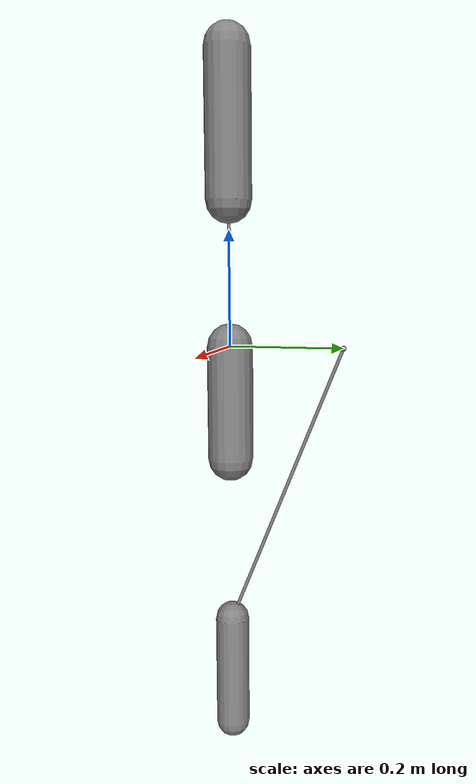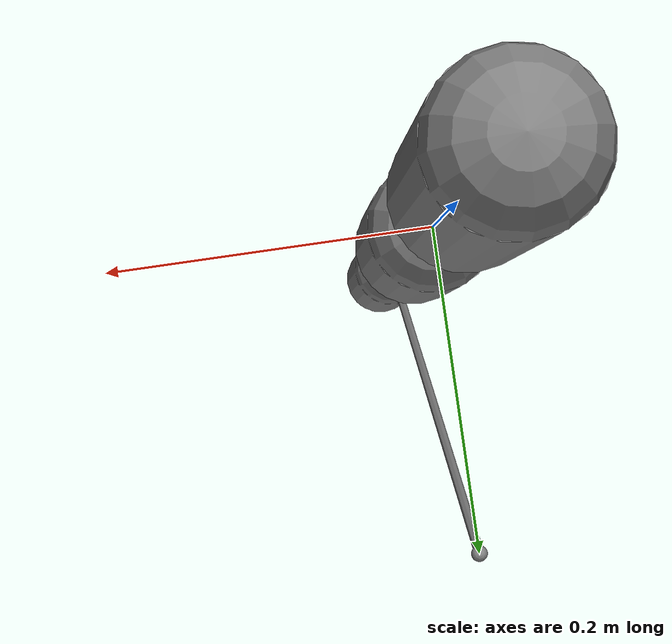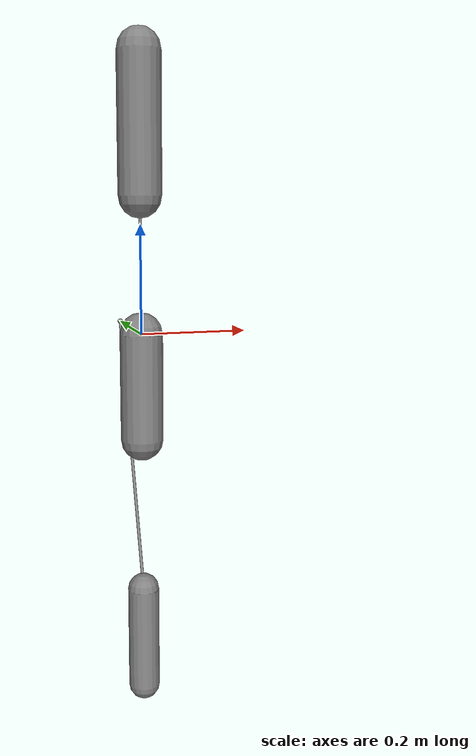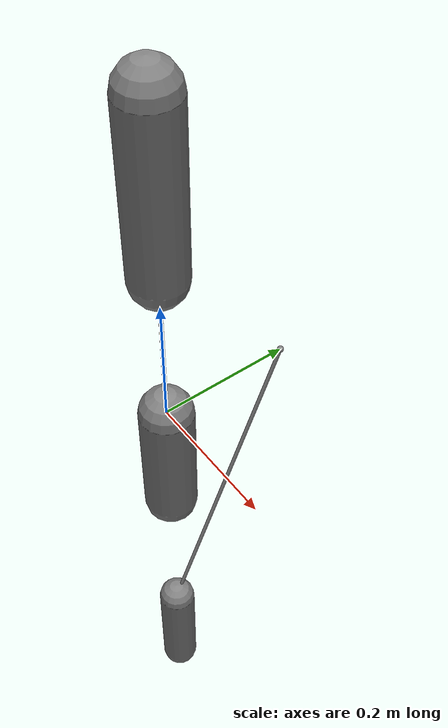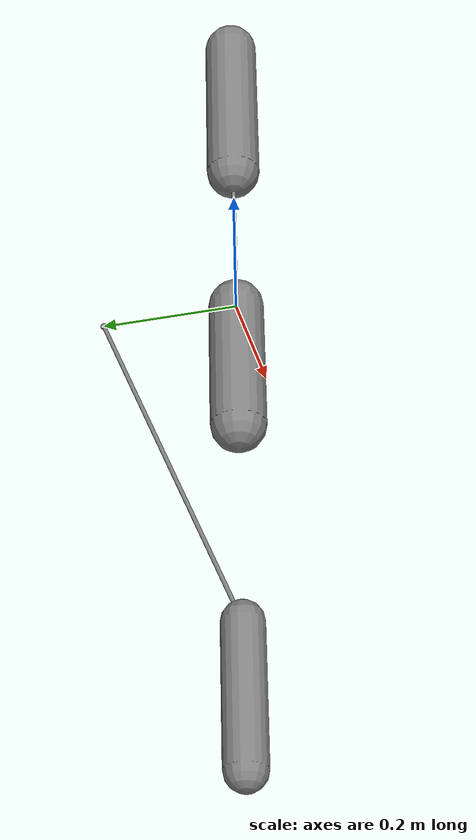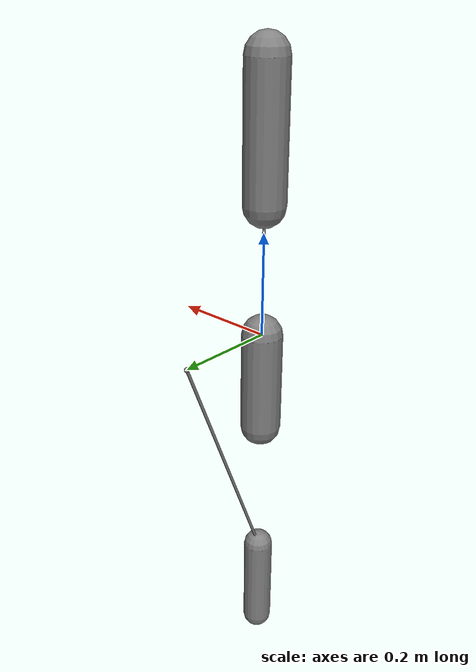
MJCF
<mujoco>
  <worldbody>
    <body name="b1" pos="0 0 0.5">
      <joint name="j1" type="hinge" axis="0 1 0"/>
      <geom type="capsule" size="0.04" fromto="0 0 0 0 0 -0.25"/>
      <site name="s1" pos="0 0 0"/>
      <body name="b2" pos="0 0 -0.5">
        <joint name="j2" type="hinge" axis="0 1 0"/>
        <geom type="capsule" size="0.04" fromto="0 0 0 0 0 -0.2"/>
        <site name="s2" pos="0 0 0"/>
        <site name="s3" pos="0 0.2 0"/>
        <body name="b3" pos="0 0 -0.5">
          <joint name="j3" type="hinge" axis="0 1 0"/>
          <geom type="capsule" size="0.03" fromto="0 0 0 0 0 -0.2"/>
          <site name="s4" pos="0 0 0"/>
        </body>
      </body>
    </body>
  </worldbody>
  <tendon>
    <spatial name="t_spatial1">
      <site site="s1"/>
      <site site="s2"/>
    </spatial>
    <fixed name="t_fixed">
      <joint joint="j1" coef="0.1"/>
    </fixed>
    <spatial name="t_spatial2">
      <site site="s3"/>
      <site site="s4"/>
    </spatial>
  </tendon>
</mujoco>
